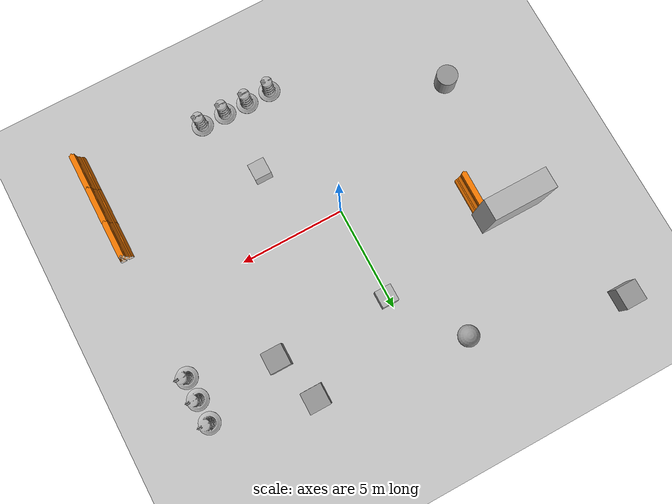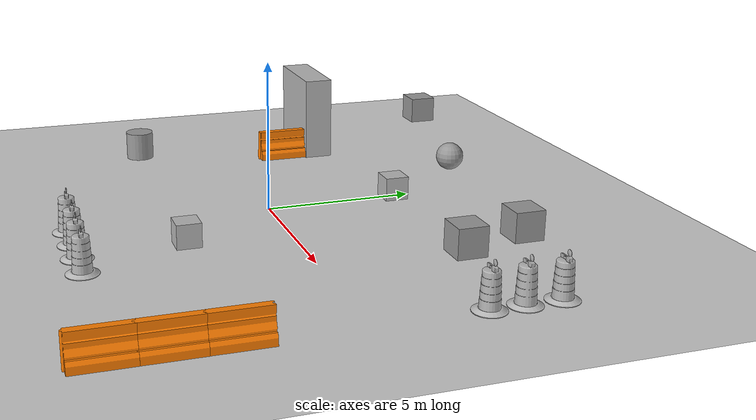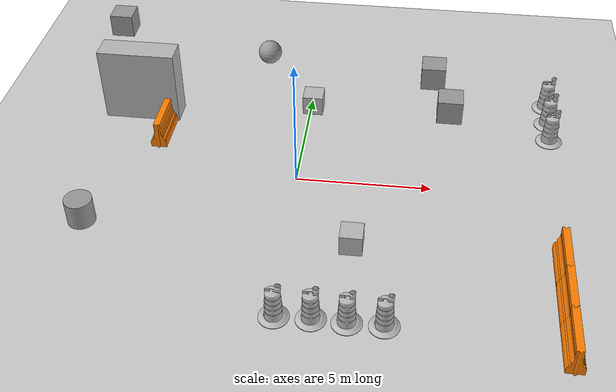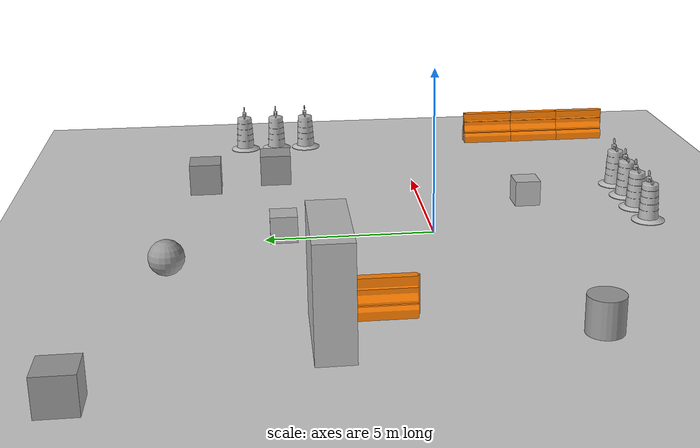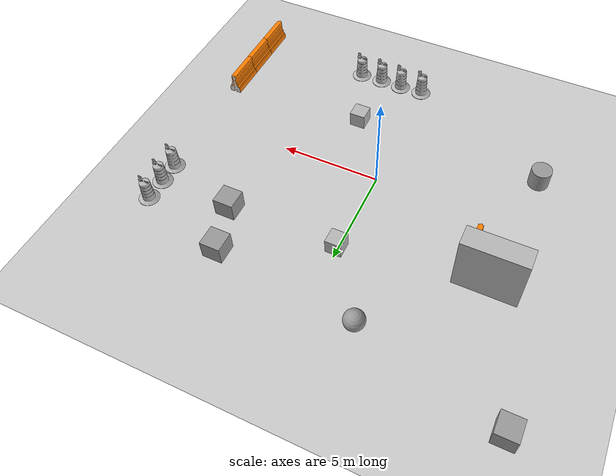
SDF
<sdf version="1.7">
 <world name="default">
  <light name="sun" type="directional">
   <pose>0 0 10 0 -0 0</pose>
   <diffuse>0.8 0.8 0.8 1</diffuse>
   <specular>0.2 0.2 0.2 1</specular>
   <attenuation>
    <range>1000</range>
    <constant>0.9</constant>
    <linear>0.01</linear>
    <quadratic>0.001</quadratic>
   </attenuation>
   <direction>-0.5 0.1 -0.9</direction>
   <spot><inner_angle>0</inner_angle><outer_angle>0</outer_angle><falloff>0</falloff></spot>
  </light>
  <model name="ground_plane">
   <static>1</static>
   <link name="link">
    <collision name="collision">
     <geometry><plane><normal>0 0 1</normal><size>100 100</size></plane></geometry>
     <surface><friction><ode><mu>100</mu><mu2>50</mu2></ode></friction></surface>
    </collision>
    <visual name="visual">
     <cast_shadows>0</cast_shadows>
     <geometry><plane><normal>0 0 1</normal><size>100 100</size></plane></geometry>
     <material>
      <script><uri>file://media/materials/scripts/gazebo.material</uri><name>Gazebo/Grey</name></script>
     </material>
    </visual>
   </link>
  </model>
  <gravity>0 0 -9.8</gravity>
  <magnetic_field>6e-06 2.3e-05 -4.2e-05</magnetic_field>
  <atmosphere type="adiabatic"/>
  <physics type="ode">
   <max_step_size>0.001</max_step_size>
   <real_time_factor>1</real_time_factor>
   <real_time_update_rate>1000</real_time_update_rate>
  </physics>
  <plugin filename="gz-sim-physics-system" name="gz::sim::systems::Physics"/>
  <plugin filename="gz-sim-user-commands-system" name="gz::sim::systems::UserCommands"/>
  <plugin filename="gz-sim-scene-broadcaster-system" name="gz::sim::systems::SceneBroadcaster"/>
  <plugin filename="gz-sim-sensors-system" name="gz::sim::systems::Sensors">
   <render_engine>ogre2</render_engine>
  </plugin>
  <scene><ambient>0.4 0.4 0.4 1</ambient><background>0.7 0.7 0.7 1</background><shadows>1</shadows></scene>
  <spherical_coordinates>
   <surface_model>EARTH_WGS84</surface_model>
   <latitude_deg>0</latitude_deg>
   <longitude_deg>0</longitude_deg>
   <elevation>0</elevation>
   <heading_deg>0</heading_deg>
  </spherical_coordinates>
  <model name="brick_box_3x1x3">
   <static>1</static>
   <link name="chassis">
    <pose>0 0 1.5 0 -0 0</pose>
    <collision name="collision"><geometry><box><size>3 1 3</size></box></geometry></collision>
    <visual name="visual">
     <geometry><mesh><uri>model://brick_box_3x1x3/meshes/simple_box.dae</uri><scale>3 1 3</scale></mesh></geometry>
     <material>
      <script>
       <uri>model://brick_box_3x1x3/materials/scripts</uri>
       <uri>model://brick_box_3x1x3/materials/textures</uri>
       <name>BrickBox/Diffuse</name>
      </script>
     </material>
    </visual>
   </link>
   <pose>-6.69334 3.49492 0 0 -0 0</pose>
  </model>
  <model name="unit_cylinder">
   <pose>-7.24701 -3.10337 0.499992 -3e-06 3e-06 0</pose>
   <link name="link">
    <inertial>
     <mass>1</mass>
     <inertia><ixx>0.145833</ixx><ixy>0</ixy><ixz>0</ixz><iyy>0.145833</iyy><iyz>0</iyz><izz>0.125</izz></inertia>
    </inertial>
    <collision name="collision">
     <geometry><cylinder><radius>0.5</radius><length>1</length></cylinder></geometry>
    </collision>
    <visual name="visual">
     <geometry><cylinder><radius>0.5</radius><length>1</length></cylinder></geometry>
     <material>
      <script><name>Gazebo/Grey</name><uri>file://media/materials/scripts/gazebo.material</uri></script>
     </material>
    </visual>
   </link>
  </model>
  <model name="unit_box">
   <pose>4.88693 6.85431 0.499995 -1e-05 -0 -0</pose>
   <link name="link">
    <inertial>
     <mass>1</mass>
     <inertia>
      <ixx>0.166667</ixx>
      <ixy>0</ixy>
      <ixz>0</ixz>
      <iyy>0.166667</iyy>
      <iyz>0</iyz>
      <izz>0.166667</izz>
     </inertia>
    </inertial>
    <collision name="collision"><geometry><box><size>1 1 1</size></box></geometry></collision>
    <visual name="visual">
     <geometry><box><size>1 1 1</size></box></geometry>
     <material>
      <script><name>Gazebo/Grey</name><uri>file://media/materials/scripts/gazebo.material</uri></script>
     </material>
    </visual>
   </link>
  </model>
  <model name="unit_sphere">
   <pose>-2.24143 7.67449 0.5 0 -0 0</pose>
   <link name="link">
    <inertial>
     <mass>1</mass>
     <inertia><ixx>0.1</ixx><ixy>0</ixy><ixz>0</ixz><iyy>0.1</iyy><iyz>0</iyz><izz>0.1</izz></inertia>
    </inertial>
    <collision name="collision"><geometry><sphere><radius>0.5</radius></sphere></geometry></collision>
    <visual name="visual">
     <geometry><sphere><radius>0.5</radius></sphere></geometry>
     <material>
      <script><name>Gazebo/Grey</name><uri>file://media/materials/scripts/gazebo.material</uri></script>
     </material>
    </visual>
   </link>
  </model>
  <model name="unit_box_0">
   <pose>5.60573 4.56064 0.499995 -1e-05 -0 -0</pose>
   <link name="link">
    <inertial>
     <mass>1</mass>
     <inertia>
      <ixx>0.166667</ixx>
      <ixy>0</ixy>
      <ixz>0</ixz>
      <iyy>0.166667</iyy>
      <iyz>0</iyz>
      <izz>0.166667</izz>
     </inertia>
    </inertial>
    <collision name="collision"><geometry><box><size>1 1 1</size></box></geometry></collision>
    <visual name="visual">
     <geometry><box><size>1 1 1</size></box></geometry>
     <material>
      <script><name>Gazebo/Grey</name><uri>file://media/materials/scripts/gazebo.material</uri></script>
     </material>
    </visual>
   </link>
  </model>
  <model name="unit_box_1">
   <pose>-9.28253 9.46486 0.499995 0 1e-05 0</pose>
   <link name="link">
    <inertial>
     <mass>1</mass>
     <inertia>
      <ixx>0.166667</ixx>
      <ixy>0</ixy>
      <ixz>0</ixz>
      <iyy>0.166667</iyy>
      <iyz>0</iyz>
      <izz>0.166667</izz>
     </inertia>
    </inertial>
    <collision name="collision"><geometry><box><size>1 1 1</size></box></geometry></collision>
    <visual name="visual">
     <geometry><box><size>1 1 1</size></box></geometry>
     <material>
      <script><name>Gazebo/Grey</name><uri>file://media/materials/scripts/gazebo.material</uri></script>
     </material>
    </visual>
   </link>
  </model>
  <model name="Construction Barrel">
   <link name="link">
    <inertial>
     <pose>0 0 0.4 0 -0 0</pose>
     <mass>500</mass>
     <inertia><ixx>51.2096</ixx><iyy>51.2096</iyy><izz>25</izz><ixy>0</ixy><ixz>0</ixz><iyz>0</iyz></inertia>
    </inertial>
    <collision name="collision">
     <geometry><mesh><uri>model://construction_barrel/meshes/construction_barrel.dae</uri></mesh></geometry>
    </collision>
    <visual name="visual">
     <geometry><mesh><uri>model://construction_barrel/meshes/construction_barrel.dae</uri></mesh></geometry>
    </visual>
   </link>
   <pose>0.216333 -6.69693 0 0 0 -1.5e-05</pose>
  </model>
  <model name="Construction Barrel_clone">
   <link name="link">
    <inertial>
     <pose>0 0 0.4 0 -0 0</pose>
     <mass>500</mass>
     <inertia><ixx>51.2096</ixx><iyy>51.2096</iyy><izz>25</izz><ixy>0</ixy><ixz>0</ixz><iyz>0</iyz></inertia>
    </inertial>
    <collision name="collision">
     <geometry><mesh><uri>model://construction_barrel/meshes/construction_barrel.dae</uri></mesh></geometry>
    </collision>
    <visual name="visual">
     <geometry><mesh><uri>model://construction_barrel/meshes/construction_barrel.dae</uri></mesh></geometry>
    </visual>
   </link>
   <pose>1.39942 -6.66848 1e-06 3e-06 2e-06 -1.1e-05</pose>
  </model>
  <model name="Construction Barrel_clone_0">
   <link name="link">
    <inertial>
     <pose>0 0 0.4 0 -0 0</pose>
     <mass>500</mass>
     <inertia><ixx>51.2096</ixx><iyy>51.2096</iyy><izz>25</izz><ixy>0</ixy><ixz>0</ixz><iyz>0</iyz></inertia>
    </inertial>
    <collision name="collision">
     <geometry><mesh><uri>model://construction_barrel/meshes/construction_barrel.dae</uri></mesh></geometry>
    </collision>
    <visual name="visual">
     <geometry><mesh><uri>model://construction_barrel/meshes/construction_barrel.dae</uri></mesh></geometry>
    </visual>
   </link>
   <pose>2.54623 -6.69427 1e-06 3e-06 2e-06 -1e-05</pose>
  </model>
  <model name="Construction Barrel_clone_1">
   <link name="link">
    <inertial>
     <pose>0 0 0.4 0 -0 0</pose>
     <mass>500</mass>
     <inertia><ixx>51.2096</ixx><iyy>51.2096</iyy><izz>25</izz><ixy>0</ixy><ixz>0</ixz><iyz>0</iyz></inertia>
    </inertial>
    <collision name="collision">
     <geometry><mesh><uri>model://construction_barrel/meshes/construction_barrel.dae</uri></mesh></geometry>
    </collision>
    <visual name="visual">
     <geometry><mesh><uri>model://construction_barrel/meshes/construction_barrel.dae</uri></mesh></geometry>
    </visual>
   </link>
   <pose>3.73128 -6.68039 1e-06 3e-06 2e-06 -9e-06</pose>
  </model>
  <model name="Construction Barrel_clone_2">
   <link name="link">
    <inertial>
     <pose>0 0 0.4 0 -0 0</pose>
     <mass>500</mass>
     <inertia><ixx>51.2096</ixx><iyy>51.2096</iyy><izz>25</izz><ixy>0</ixy><ixz>0</ixz><iyz>0</iyz></inertia>
    </inertial>
    <collision name="collision">
     <geometry><mesh><uri>model://construction_barrel/meshes/construction_barrel.dae</uri></mesh></geometry>
    </collision>
    <visual name="visual">
     <geometry><mesh><uri>model://construction_barrel/meshes/construction_barrel.dae</uri></mesh></geometry>
    </visual>
   </link>
   <pose>9.50229 4.44851 1e-06 3e-06 2e-06 -8e-06</pose>
  </model>
  <model name="Construction Barrel_clone_3">
   <link name="link">
    <inertial>
     <pose>0 0 0.4 0 -0 0</pose>
     <mass>500</mass>
     <inertia><ixx>51.2096</ixx><iyy>51.2096</iyy><izz>25</izz><ixy>0</ixy><ixz>0</ixz><iyz>0</iyz></inertia>
    </inertial>
    <collision name="collision">
     <geometry><mesh><uri>model://construction_barrel/meshes/construction_barrel.dae</uri></mesh></geometry>
    </collision>
    <visual name="visual">
     <geometry><mesh><uri>model://construction_barrel/meshes/construction_barrel.dae</uri></mesh></geometry>
    </visual>
   </link>
   <pose>9.50775 3.37485 1e-06 3e-06 2e-06 -7e-06</pose>
  </model>
  <model name="Construction Barrel_clone_4">
   <link name="link">
    <inertial>
     <pose>0 0 0.4 0 -0 0</pose>
     <mass>500</mass>
     <inertia><ixx>51.2096</ixx><iyy>51.2096</iyy><izz>25</izz><ixy>0</ixy><ixz>0</ixz><iyz>0</iyz></inertia>
    </inertial>
    <collision name="collision">
     <geometry><mesh><uri>model://construction_barrel/meshes/construction_barrel.dae</uri></mesh></geometry>
    </collision>
    <visual name="visual">
     <geometry><mesh><uri>model://construction_barrel/meshes/construction_barrel.dae</uri></mesh></geometry>
    </visual>
   </link>
   <pose>9.49838 5.58574 -2e-06 4e-06 9e-06 -5e-06</pose>
  </model>
  <model name="drc_practice_organge_jersey_barrier">
   <static>1</static>
   <link name="link">
    <visual name="visual">
     <geometry>
      <mesh><uri>model://drc_practice_orange_jersey_barrier/meshes/jersey_barrier.dae</uri></mesh>
     </geometry>
    </visual>
    <collision name="collision">
     <geometry>
      <mesh><uri>model://drc_practice_orange_jersey_barrier/meshes/jersey_barrier.dae</uri></mesh>
     </geometry>
    </collision>
   </link>
   <pose>-5.58133 2.15043 0 0 -0 0</pose>
  </model>
  <model name="drc_practice_organge_jersey_barrier_clone">
   <static>1</static>
   <link name="link">
    <visual name="visual">
     <geometry>
      <mesh><uri>model://drc_practice_orange_jersey_barrier/meshes/jersey_barrier.dae</uri></mesh>
     </geometry>
    </visual>
    <collision name="collision">
     <geometry>
      <mesh><uri>model://drc_practice_orange_jersey_barrier/meshes/jersey_barrier.dae</uri></mesh>
     </geometry>
    </collision>
   </link>
   <pose>9.50646 -6.94412 0 0 -0 0</pose>
  </model>
  <model name="drc_practice_organge_jersey_barrier_clone_0">
   <static>1</static>
   <link name="link">
    <visual name="visual">
     <geometry>
      <mesh><uri>model://drc_practice_orange_jersey_barrier/meshes/jersey_barrier.dae</uri></mesh>
     </geometry>
    </visual>
    <collision name="collision">
     <geometry>
      <mesh><uri>model://drc_practice_orange_jersey_barrier/meshes/jersey_barrier.dae</uri></mesh>
     </geometry>
    </collision>
   </link>
   <pose>9.51127 -5.223 0 0 -0 0</pose>
  </model>
  <model name="drc_practice_organge_jersey_barrier_clone_1">
   <static>1</static>
   <link name="link">
    <visual name="visual">
     <geometry>
      <mesh><uri>model://drc_practice_orange_jersey_barrier/meshes/jersey_barrier.dae</uri></mesh>
     </geometry>
    </visual>
    <collision name="collision">
     <geometry>
      <mesh><uri>model://drc_practice_orange_jersey_barrier/meshes/jersey_barrier.dae</uri></mesh>
     </geometry>
    </collision>
   </link>
   <pose>9.51433 -3.47165 0 0 -0 0</pose>
  </model>
  <model name="number5">
   <pose>2.37261 -3.32284 0.4 0 -0 0</pose>
   <static>1</static>
   <link name="link">
    <visual name="visual">
     <geometry><mesh><uri>model://number1/meshes/number.dae</uri></mesh></geometry>
     <material>
      <script>
       <uri>model://number5/materials/scripts</uri>
       <uri>model://number5/materials/textures</uri>
       <name>Number/Five</name>
      </script>
     </material>
    </visual>
   </link>
  </model>
  <model name="number2">
   <pose>0.090338 4.44366 0.4 0 -0 0</pose>
   <static>1</static>
   <link name="link">
    <visual name="visual">
     <geometry><mesh><uri>model://number1/meshes/number.dae</uri></mesh></geometry>
     <material>
      <script>
       <uri>model://number2/materials/scripts</uri>
       <uri>model://number2/materials/textures</uri>
       <name>Number/Two</name>
      </script>
     </material>
    </visual>
   </link>
  </model>
 </world>
</sdf>
